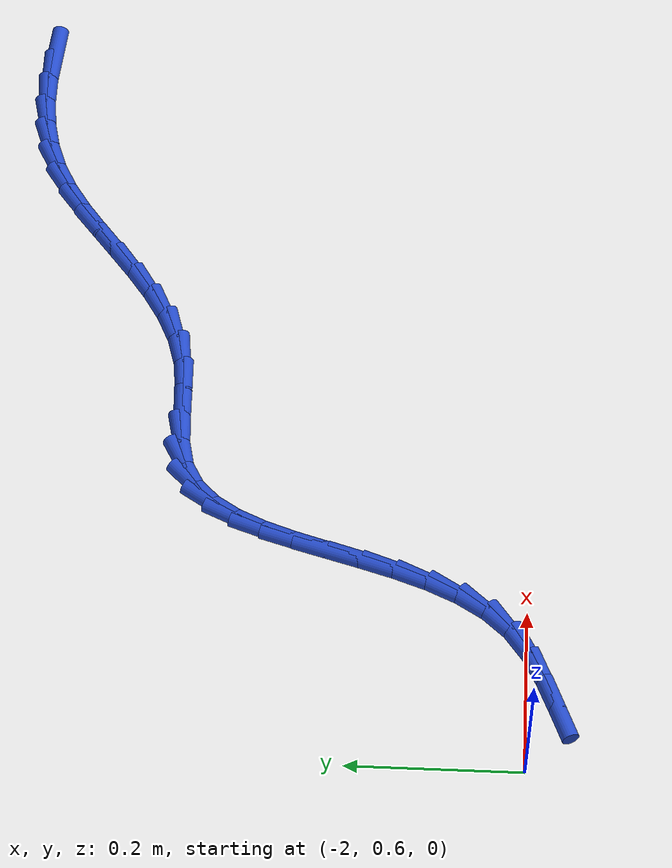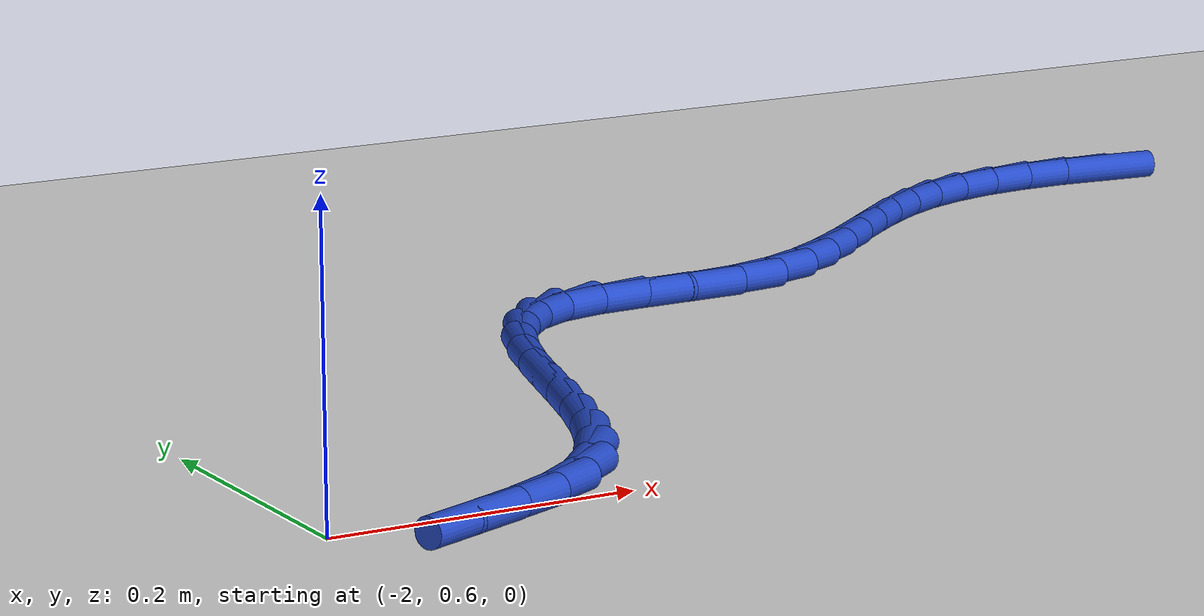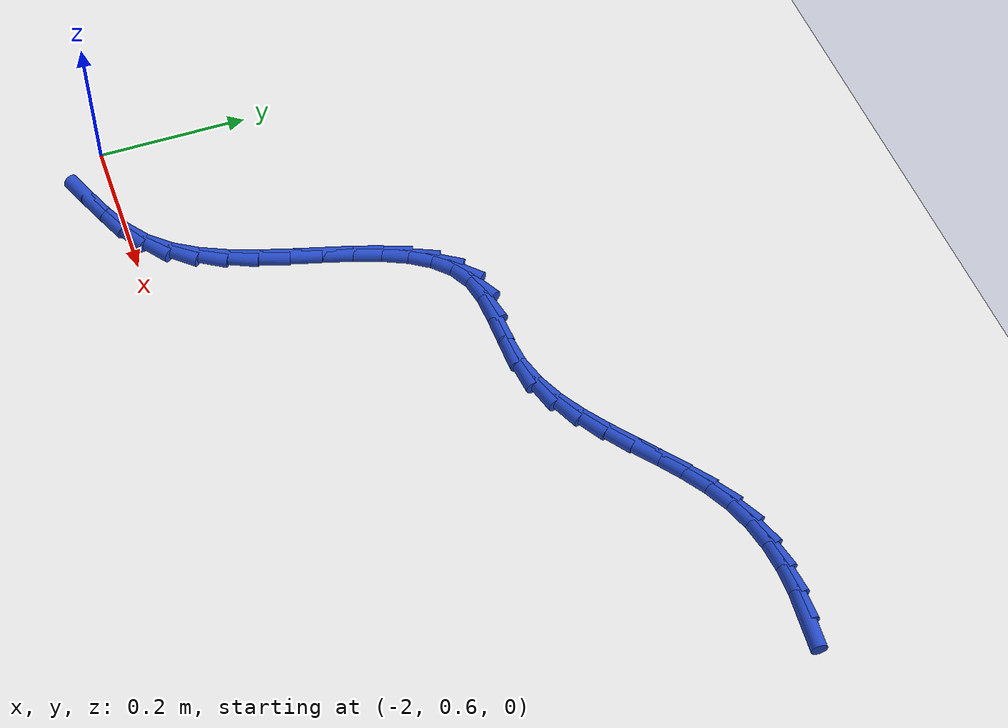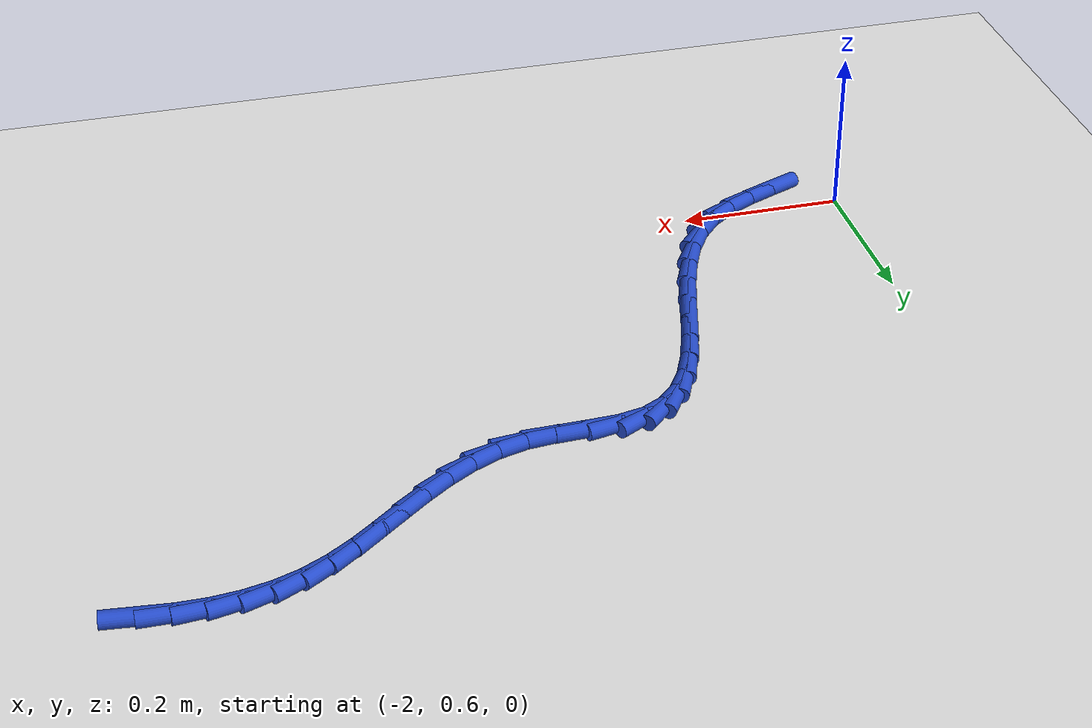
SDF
<sdf version="1.6">
 <world name="default">
  <model name="ground_plane">
   <static>1</static>
   <link name="link">
    <collision name="collision">
     <geometry><plane><normal>0 0 1</normal><size>100 100</size></plane></geometry>
     <surface><friction><ode><mu>100</mu><mu2>50</mu2></ode></friction></surface>
    </collision>
    <visual name="visual">
     <cast_shadows>0</cast_shadows>
     <geometry><plane><normal>0 0 1</normal><size>100 100</size></plane></geometry>
     <material>
      <script><uri>file://media/materials/scripts/gazebo.material</uri><name>Gazebo/WhiteGlow</name></script>
     </material>
    </visual>
   </link>
  </model>
  <model name="line">
   <link name="link_48">
    <pose>-1.0512756063045319 1.189214689699897 0.01 0 1.57 -0.10202097017545224</pose>
    <collision name="collision">
     <geometry><cylinder><radius>0.01</radius><length>0.08</length></cylinder></geometry>
    </collision>
    <visual name="visual">
     <material>
      <script><name>Gazebo/Blue</name><uri>file://media/materials/scripts/gazebo.material</uri></script>
     </material>
     <geometry><cylinder><radius>0.01</radius><length>0.08</length></cylinder></geometry>
    </visual>
   </link>
   <link name="link_49">
    <pose>-1.0865023936159288 1.192821081518121 0.01 0 1.57 -0.013132208832821199</pose>
    <collision name="collision">
     <geometry><cylinder><radius>0.01</radius><length>0.08</length></cylinder></geometry>
    </collision>
    <visual name="visual">
     <material>
      <script><name>Gazebo/Blue</name><uri>file://media/materials/scripts/gazebo.material</uri></script>
     </material>
     <geometry><cylinder><radius>0.01</radius><length>0.08</length></cylinder></geometry>
    </visual>
   </link>
   <link name="link_50">
    <pose>-1.1210551875847874 1.193274862110141 0.01 0 1.57 0.09010541359045988</pose>
    <collision name="collision">
     <geometry><cylinder><radius>0.01</radius><length>0.08</length></cylinder></geometry>
    </collision>
    <visual name="visual">
     <material>
      <script><name>Gazebo/Blue</name><uri>file://media/materials/scripts/gazebo.material</uri></script>
     </material>
     <geometry><cylinder><radius>0.01</radius><length>0.08</length></cylinder></geometry>
    </visual>
   </link>
   <link name="link_51">
    <pose>-1.1547638159257152 1.1902292854161058 0.01 0 1.57 0.20775018705595957</pose>
    <collision name="collision">
     <geometry><cylinder><radius>0.01</radius><length>0.08</length></cylinder></geometry>
    </collision>
    <visual name="visual">
     <material>
      <script><name>Gazebo/Blue</name><uri>file://media/materials/scripts/gazebo.material</uri></script>
     </material>
     <geometry><cylinder><radius>0.01</radius><length>0.08</length></cylinder></geometry>
    </visual>
   </link>
   <link name="link_52">
    <pose>-1.1874581063533205 1.1833376053761648 0.01 0 1.57 0.3382602199083529</pose>
    <collision name="collision">
     <geometry><cylinder><radius>0.01</radius><length>0.08</length></cylinder></geometry>
    </collision>
    <visual name="visual">
     <material>
      <script><name>Gazebo/Blue</name><uri>file://media/materials/scripts/gazebo.material</uri></script>
     </material>
     <geometry><cylinder><radius>0.01</radius><length>0.08</length></cylinder></geometry>
    </visual>
   </link>
   <link name="link_53">
    <pose>-1.2189678865822107 1.1722530759304666 0.01 0 1.57 0.4747191054613439</pose>
    <collision name="collision">
     <geometry><cylinder><radius>0.01</radius><length>0.08</length></cylinder></geometry>
    </collision>
    <visual name="visual">
     <material>
      <script><name>Gazebo/Blue</name><uri>file://media/materials/scripts/gazebo.material</uri></script>
     </material>
     <geometry><cylinder><radius>0.01</radius><length>0.08</length></cylinder></geometry>
    </visual>
   </link>
   <link name="link_54">
    <pose>-1.2491635338609743 1.1567350200682844 0.01 0 1.57 0.5830899793063574</pose>
    <collision name="collision">
     <geometry><cylinder><radius>0.01</radius><length>0.08</length></cylinder></geometry>
    </collision>
    <visual name="visual">
     <material>
      <script><name>Gazebo/Blue</name><uri>file://media/materials/scripts/gazebo.material</uri></script>
     </material>
     <geometry><cylinder><radius>0.01</radius><length>0.08</length></cylinder></geometry>
    </visual>
   </link>
   <link name="link_55">
    <pose>-1.2782902490373502 1.1375232204500374 0.01 0 1.57 0.649231325469338</pose>
    <collision name="collision">
     <geometry><cylinder><radius>0.01</radius><length>0.08</length></cylinder></geometry>
    </collision>
    <visual name="visual">
     <material>
      <script><name>Gazebo/Blue</name><uri>file://media/materials/scripts/gazebo.material</uri></script>
     </material>
     <geometry><cylinder><radius>0.01</radius><length>0.08</length></cylinder></geometry>
    </visual>
   </link>
   <link name="link_56">
    <pose>-1.306795917609366 1.1158876401357187 0.01 0 1.57 0.6772452412578903</pose>
    <collision name="collision">
     <geometry><cylinder><radius>0.01</radius><length>0.08</length></cylinder></geometry>
    </collision>
    <visual name="visual">
     <material>
      <script><name>Gazebo/Blue</name><uri>file://media/materials/scripts/gazebo.material</uri></script>
     </material>
     <geometry><cylinder><radius>0.01</radius><length>0.08</length></cylinder></geometry>
    </visual>
   </link>
   <link name="link_57">
    <pose>-1.3351304120024547 1.093103439569356 0.01 0 1.57 0.6697581610197426</pose>
    <collision name="collision">
     <geometry><cylinder><radius>0.01</radius><length>0.08</length></cylinder></geometry>
    </collision>
    <visual name="visual">
     <material>
      <script><name>Gazebo/Blue</name><uri>file://media/materials/scripts/gazebo.material</uri></script>
     </material>
     <geometry><cylinder><radius>0.01</radius><length>0.08</length></cylinder></geometry>
    </visual>
   </link>
   <link name="link_58">
    <pose>-1.3637436046420477 1.070445779194976 0.01 0 1.57 0.6269323758624077</pose>
    <collision name="collision">
     <geometry><cylinder><radius>0.01</radius><length>0.08</length></cylinder></geometry>
    </collision>
    <visual name="visual">
     <material>
      <script><name>Gazebo/Blue</name><uri>file://media/materials/scripts/gazebo.material</uri></script>
     </material>
     <geometry><cylinder><radius>0.01</radius><length>0.08</length></cylinder></geometry>
    </visual>
   </link>
   <link name="link_59">
    <pose>-1.3930853679535784 1.049189819456607 0.01 0 1.57 0.5468266544958442</pose>
    <collision name="collision">
     <geometry><cylinder><radius>0.01</radius><length>0.08</length></cylinder></geometry>
    </collision>
    <visual name="visual">
     <material>
      <script><name>Gazebo/Blue</name><uri>file://media/materials/scripts/gazebo.material</uri></script>
     </material>
     <geometry><cylinder><radius>0.01</radius><length>0.08</length></cylinder></geometry>
    </visual>
   </link>
   <link name="link_60">
    <pose>-1.4236055743624791 1.0306107207982758 0.01 0 1.57 0.42699124673926014</pose>
    <collision name="collision">
     <geometry><cylinder><radius>0.01</radius><length>0.08</length></cylinder></geometry>
    </collision>
    <visual name="visual">
     <material>
      <script><name>Gazebo/Blue</name><uri>file://media/materials/scripts/gazebo.material</uri></script>
     </material>
     <geometry><cylinder><radius>0.01</radius><length>0.08</length></cylinder></geometry>
    </visual>
   </link>
   <link name="link_61">
    <pose>-1.4557540962941813 1.0159836436640095 0.01 0 1.57 0.26802800167505036</pose>
    <collision name="collision">
     <geometry><cylinder><radius>0.01</radius><length>0.08</length></cylinder></geometry>
    </collision>
    <visual name="visual">
     <material>
      <script><name>Gazebo/Blue</name><uri>file://media/materials/scripts/gazebo.material</uri></script>
     </material>
     <geometry><cylinder><radius>0.01</radius><length>0.08</length></cylinder></geometry>
    </visual>
   </link>
   <link name="link_62">
    <pose>-1.4899808061741184 1.0065837484978362 0.01 0 1.57 0.09668751005792002</pose>
    <collision name="collision">
     <geometry><cylinder><radius>0.01</radius><length>0.08</length></cylinder></geometry>
    </collision>
    <visual name="visual">
     <material>
      <script><name>Gazebo/Blue</name><uri>file://media/materials/scripts/gazebo.material</uri></script>
     </material>
     <geometry><cylinder><radius>0.01</radius><length>0.08</length></cylinder></geometry>
    </visual>
   </link>
   <link name="link_63">
    <pose>-1.5264119443233584 1.0030502947924755 0.01 0 1.57 0.012838932992825793</pose>
    <collision name="collision">
     <geometry><cylinder><radius>0.01</radius><length>0.08</length></cylinder></geometry>
    </collision>
    <visual name="visual">
     <material>
      <script><name>Gazebo/Blue</name><uri>file://media/materials/scripts/gazebo.material</uri></script>
     </material>
     <geometry><cylinder><radius>0.01</radius><length>0.08</length></cylinder></geometry>
    </visual>
   </link>
   <link name="link_64">
    <pose>-1.5634192454608966 1.0025751344244451 0.01 0 1.57 0.039223806656412355</pose>
    <collision name="collision">
     <geometry><cylinder><radius>0.01</radius><length>0.08</length></cylinder></geometry>
    </collision>
    <visual name="visual">
     <material>
      <script><name>Gazebo/Blue</name><uri>file://media/materials/scripts/gazebo.material</uri></script>
     </material>
     <geometry><cylinder><radius>0.01</radius><length>0.08</length></cylinder></geometry>
    </visual>
   </link>
   <link name="link_65">
    <pose>-1.5987826628546415 1.00118733479172 0.01 0 1.57 0.1965188772060571</pose>
    <collision name="collision">
     <geometry><cylinder><radius>0.01</radius><length>0.08</length></cylinder></geometry>
    </collision>
    <visual name="visual">
     <material>
      <script><name>Gazebo/Blue</name><uri>file://media/materials/scripts/gazebo.material</uri></script>
     </material>
     <geometry><cylinder><radius>0.01</radius><length>0.08</length></cylinder></geometry>
    </visual>
   </link>
   <link name="link_66">
    <pose>-1.6302823328229852 0.9949161155931605 0.01 0 1.57 0.49087922090451913</pose>
    <collision name="collision">
     <geometry><cylinder><radius>0.01</radius><length>0.08</length></cylinder></geometry>
    </collision>
    <visual name="visual">
     <material>
      <script><name>Gazebo/Blue</name><uri>file://media/materials/scripts/gazebo.material</uri></script>
     </material>
     <geometry><cylinder><radius>0.01</radius><length>0.08</length></cylinder></geometry>
    </visual>
   </link>
   <link name="link_67">
    <pose>-1.6564066280707481 0.9809522085368908 0.01 0 1.57 0.780251525618239</pose>
    <collision name="collision">
     <geometry><cylinder><radius>0.01</radius><length>0.08</length></cylinder></geometry>
    </collision>
    <visual name="visual">
     <material>
      <script><name>Gazebo/Blue</name><uri>file://media/materials/scripts/gazebo.material</uri></script>
     </material>
     <geometry><cylinder><radius>0.01</radius><length>0.08</length></cylinder></geometry>
    </visual>
   </link>
   <link name="link_68">
    <pose>-1.6777070606411468 0.959869906475675 0.01 0 1.57 0.9985222385672714</pose>
    <collision name="collision">
     <geometry><cylinder><radius>0.01</radius><length>0.08</length></cylinder></geometry>
    </collision>
    <visual name="visual">
     <material>
      <script><name>Gazebo/Blue</name><uri>file://media/materials/scripts/gazebo.material</uri></script>
     </material>
     <geometry><cylinder><radius>0.01</radius><length>0.08</length></cylinder></geometry>
    </visual>
   </link>
   <link name="link_69">
    <pose>-1.6951087647861713 0.9328562449718213 0.01 0 1.57 1.1443603434440754</pose>
    <collision name="collision">
     <geometry><cylinder><radius>0.01</radius><length>0.08</length></cylinder></geometry>
    </collision>
    <visual name="visual">
     <material>
      <script><name>Gazebo/Blue</name><uri>file://media/materials/scripts/gazebo.material</uri></script>
     </material>
     <geometry><cylinder><radius>0.01</radius><length>0.08</length></cylinder></geometry>
    </visual>
   </link>
   <link name="link_70">
    <pose>-1.7095368747578104 0.901098259587637 0.01 0 1.57 1.2336346183010574</pose>
    <collision name="collision">
     <geometry><cylinder><radius>0.01</radius><length>0.08</length></cylinder></geometry>
    </collision>
    <visual name="visual">
     <material>
      <script><name>Gazebo/Blue</name><uri>file://media/materials/scripts/gazebo.material</uri></script>
     </material>
     <geometry><cylinder><radius>0.01</radius><length>0.08</length></cylinder></geometry>
    </visual>
   </link>
   <link name="link_71">
    <pose>-1.7219165248080541 0.8657829858854305 0.01 0 1.57 1.2805409600037174</pose>
    <collision name="collision">
     <geometry><cylinder><radius>0.01</radius><length>0.08</length></cylinder></geometry>
    </collision>
    <visual name="visual">
     <material>
      <script><name>Gazebo/Blue</name><uri>file://media/materials/scripts/gazebo.material</uri></script>
     </material>
     <geometry><cylinder><radius>0.01</radius><length>0.08</length></cylinder></geometry>
    </visual>
   </link>
   <link name="link_72">
    <pose>-1.7331728491888918 0.8280974594275086 0.01 0 1.57 1.293620254671548</pose>
    <collision name="collision">
     <geometry><cylinder><radius>0.01</radius><length>0.08</length></cylinder></geometry>
    </collision>
    <visual name="visual">
     <material>
      <script><name>Gazebo/Blue</name><uri>file://media/materials/scripts/gazebo.material</uri></script>
     </material>
     <geometry><cylinder><radius>0.01</radius><length>0.08</length></cylinder></geometry>
    </visual>
   </link>
   <link name="link_73">
    <pose>-1.7442309821523125 0.7892287157761795 0.01 0 1.57 1.2763773502701463</pose>
    <collision name="collision">
     <geometry><cylinder><radius>0.01</radius><length>0.08</length></cylinder></geometry>
    </collision>
    <visual name="visual">
     <material>
      <script><name>Gazebo/Blue</name><uri>file://media/materials/scripts/gazebo.material</uri></script>
     </material>
     <geometry><cylinder><radius>0.01</radius><length>0.08</length></cylinder></geometry>
    </visual>
   </link>
   <link name="link_74">
    <pose>-1.7560160579503061 0.750363790493751 0.01 0 1.57 1.2281931848585397</pose>
    <collision name="collision">
     <geometry><cylinder><radius>0.01</radius><length>0.08</length></cylinder></geometry>
    </collision>
    <visual name="visual">
     <material>
      <script><name>Gazebo/Blue</name><uri>file://media/materials/scripts/gazebo.material</uri></script>
     </material>
     <geometry><cylinder><radius>0.01</radius><length>0.08</length></cylinder></geometry>
    </visual>
   </link>
   <link name="link_75">
    <pose>-1.7694532108348606 0.7126897191425304 0.01 0 1.57 1.1448583109729504</pose>
    <collision name="collision">
     <geometry><cylinder><radius>0.01</radius><length>0.08</length></cylinder></geometry>
    </collision>
    <visual name="visual">
     <material>
      <script><name>Gazebo/Blue</name><uri>file://media/materials/scripts/gazebo.material</uri></script>
     </material>
     <geometry><cylinder><radius>0.01</radius><length>0.08</length></cylinder></geometry>
    </visual>
   </link>
   <link name="link_76">
    <pose>-1.7854675750579674 0.677393537284826 0.01 0 1.57 1.0193749311249356</pose>
    <collision name="collision">
     <geometry><cylinder><radius>0.01</radius><length>0.08</length></cylinder></geometry>
    </collision>
    <visual name="visual">
     <material>
      <script><name>Gazebo/Blue</name><uri>file://media/materials/scripts/gazebo.material</uri></script>
     </material>
     <geometry><cylinder><radius>0.01</radius><length>0.08</length></cylinder></geometry>
    </visual>
   </link>
   <link name="link_77">
    <pose>-1.8049842848716144 0.6456622804829448 0.01 0 1.57 0.8449290504141513</pose>
    <collision name="collision">
     <geometry><cylinder><radius>0.01</radius><length>0.08</length></cylinder></geometry>
    </collision>
    <visual name="visual">
     <material>
      <script><name>Gazebo/Blue</name><uri>file://media/materials/scripts/gazebo.material</uri></script>
     </material>
     <geometry><cylinder><radius>0.01</radius><length>0.08</length></cylinder></geometry>
    </visual>
   </link>
   <link name="link_78">
    <pose>-1.8289284745277918 0.6186829842991953 0.01 0 1.57 0.638547806476746</pose>
    <collision name="collision">
     <geometry><cylinder><radius>0.01</radius><length>0.08</length></cylinder></geometry>
    </collision>
    <visual name="visual">
     <material>
      <script><name>Gazebo/Blue</name><uri>file://media/materials/scripts/gazebo.material</uri></script>
     </material>
     <geometry><cylinder><radius>0.01</radius><length>0.08</length></cylinder></geometry>
    </visual>
   </link>
   <link name="link_79">
    <pose>-1.857823522812315 0.5972345064140222 0.01 0 1.57 0.4852691198523882</pose>
    <collision name="collision">
     <geometry><cylinder><radius>0.01</radius><length>0.08</length></cylinder></geometry>
    </collision>
    <visual name="visual">
     <material>
      <script><name>Gazebo/Blue</name><uri>file://media/materials/scripts/gazebo.material</uri></script>
     </material>
     <geometry><cylinder><radius>0.01</radius><length>0.08</length></cylinder></geometry>
    </visual>
   </link>
   <link name="link_80">
    <pose>-1.890258634028333 0.5801306105391228 0.01 0 1.57 0.4041956412651924</pose>
    <collision name="collision">
     <geometry><cylinder><radius>0.01</radius><length>0.08</length></cylinder></geometry>
    </collision>
    <visual name="visual">
     <material>
      <script><name>Gazebo/Blue</name><uri>file://media/materials/scripts/gazebo.material</uri></script>
     </material>
     <geometry><cylinder><radius>0.01</radius><length>0.08</length></cylinder></geometry>
    </visual>
   </link>
   <link name="link_81">
    <pose>-1.9242416849544928 0.5655944398281746 0.01 0 1.57 0.38895757506970063</pose>
    <collision name="collision">
     <geometry><cylinder><radius>0.01</radius><length>0.08</length></cylinder></geometry>
    </collision>
    <visual name="visual">
     <material>
      <script><name>Gazebo/Blue</name><uri>file://media/materials/scripts/gazebo.material</uri></script>
     </material>
     <geometry><cylinder><radius>0.01</radius><length>0.08</length></cylinder></geometry>
    </visual>
   </link>
  </model>
 </world>
</sdf>
